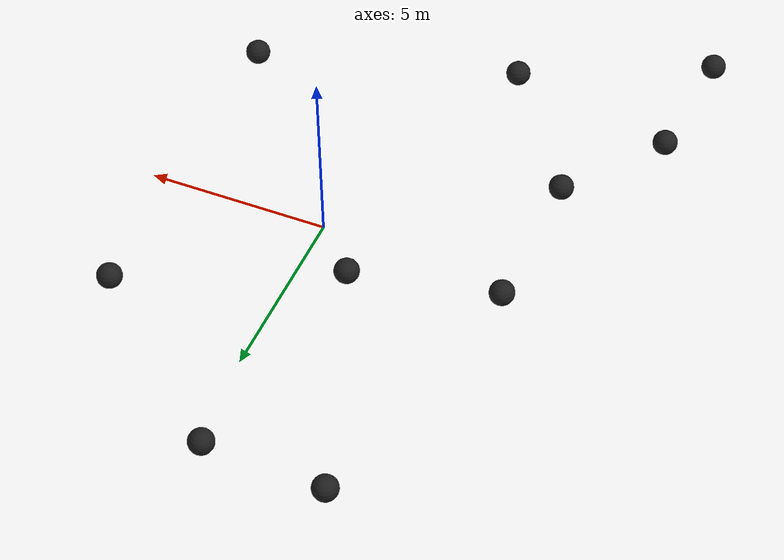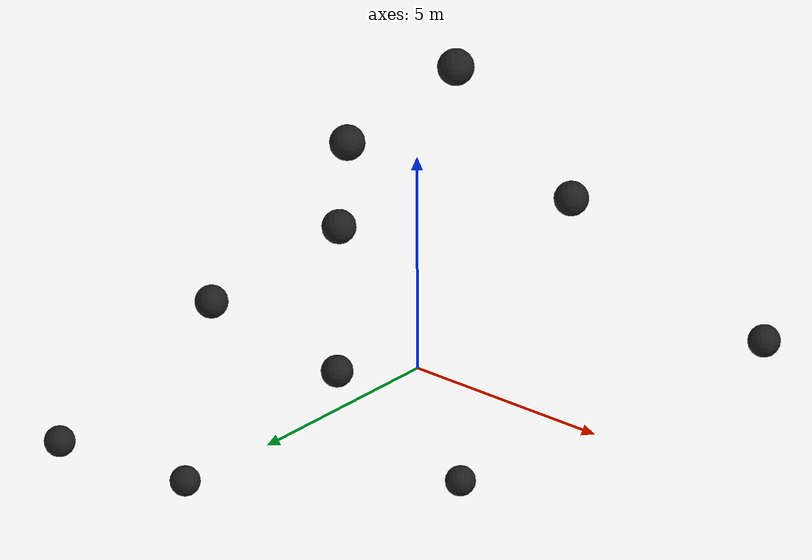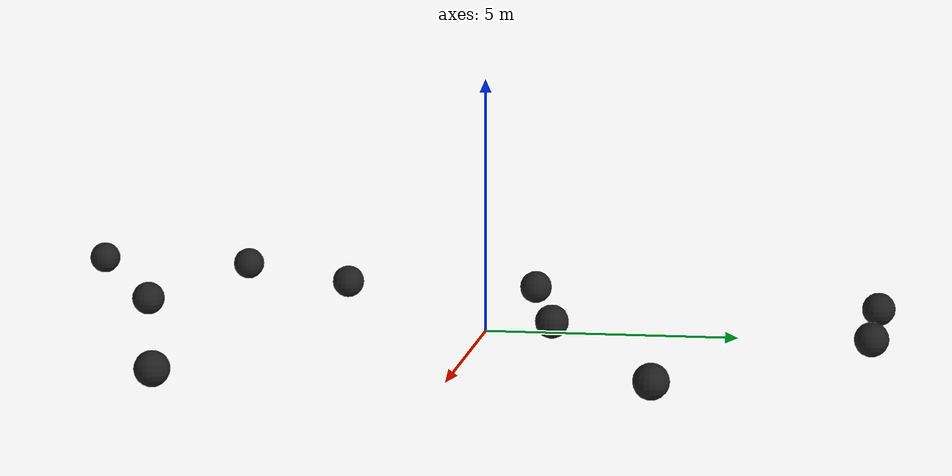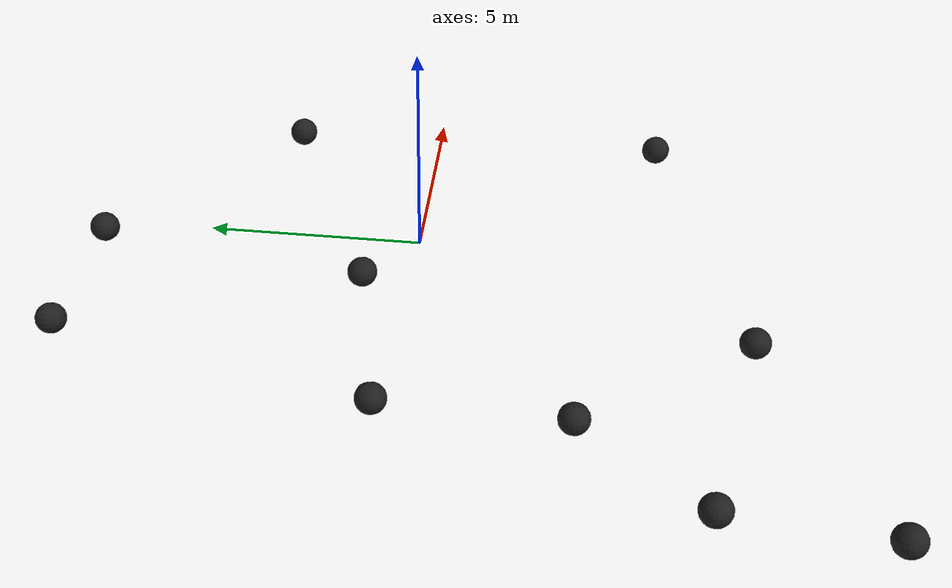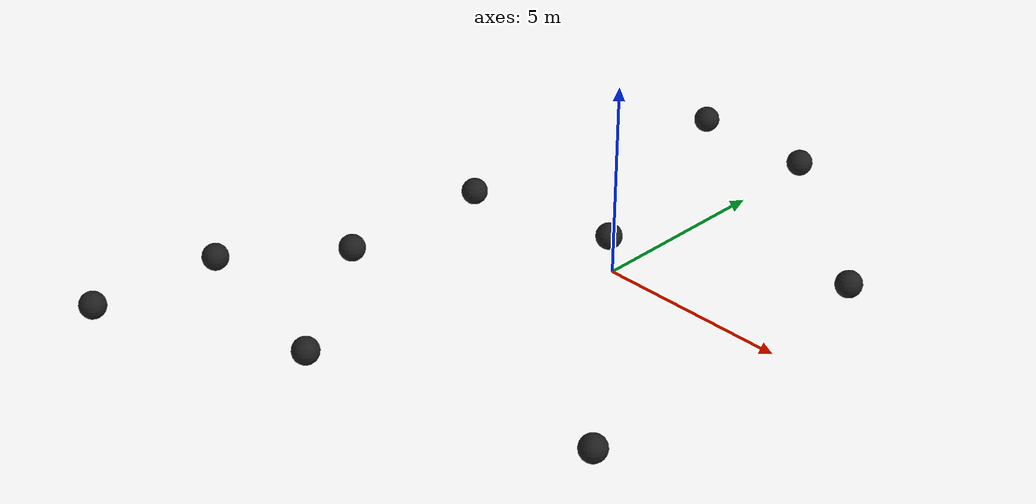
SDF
<?xml version="1.0"?>
<!-- automaticly generated by the 'generate_avoid_obstacls_buoys' script -->
<sdf version="1.6">
  <model name="robotx_obstacle_course">
    <include>
      <name>polyform_a5_0</name>
      <pose>-2.58015987019 -7.58524730201 0.0 0 0 0 </pose>
      <uri>model://polyform_a5</uri>
    </include>

    <include>
      <name>polyform_a5_1</name>
      <pose>-0.236953366022 7.58196200125 0.0 0 0 0 </pose>
      <uri>model://polyform_a5</uri>
    </include>

    <include>
      <name>polyform_a5_2</name>
      <pose>-5.15913632363 0.345860321437 0.0 0 0 0 </pose>
      <uri>model://polyform_a5</uri>
    </include>

    <include>
      <name>polyform_a5_3</name>
      <pose>-5.25274004021 -3.80197738751 0.0 0 0 0 </pose>
      <uri>model://polyform_a5</uri>
    </include>

    <include>
      <name>polyform_a5_4</name>
      <pose>-7.27731563817 -6.5015634484 0.0 0 0 0 </pose>
      <uri>model://polyform_a5</uri>
    </include>

    <include>
      <name>polyform_a5_5</name>
      <pose>-1.19341610949 1.1775337488 0.0 0 0 0 </pose>
      <uri>model://polyform_a5</uri>
    </include>

    <include>
      <name>polyform_a5_6</name>
      <pose>4.36822507644 3.66942246528 0.0 0 0 0 </pose>
      <uri>model://polyform_a5</uri>
    </include>

    <include>
      <name>polyform_a5_7</name>
      <pose>-7.57874619492 -9.95901821018 0.0 0 0 0 </pose>
      <uri>model://polyform_a5</uri>
    </include>

    <include>
      <name>polyform_a5_8</name>
      <pose>4.5842915634 -5.58029079259 0.0 0 0 0 </pose>
      <uri>model://polyform_a5</uri>
    </include>

    <include>
      <name>polyform_a5_9</name>
      <pose>-3.55646651581 7.6980163296 0.0 0 0 0 </pose>
      <uri>model://polyform_a5</uri>
    </include>

  </model>
</sdf>

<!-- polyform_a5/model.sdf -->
<sdf version="1.6">
  <!-- Reference: https://www.polyformus.com/buoys/a-series -->
  <model name="polyform_a5">
    <static>false</static>
    <pose>0 0 0 0 0 0</pose>
    <link name="base_link">
      <inertial>
        <!-- Reference: https://www.sailrite.com/PDF/Polyform-Buoys-Fenders-Accessories.pdf, page 8 -->
        <mass>8.98</mass>
      </inertial>
      <visual name="visual">
        <geometry>
          <sphere><radius>0.343</radius></sphere>
        </geometry>
        <material>
          <script>
            <uri>file://media/materials/scripts/gazebo.material</uri>
            <name>Gazebo/Black</name>
          </script>
        </material>
      </visual>
      <collision name="collision">
        <geometry>
          <sphere><radius>0.343</radius></sphere>
        </geometry>
      </collision>
    </link>

    <plugin name="BuoyancyPlugin" filename="libbuoyancy_gazebo_plugin.so">
      <wave_model>ocean_waves</wave_model>
      <fluid_density>1000</fluid_density>
      <fluid_level>0.0</fluid_level>
      <linear_drag>20.0</linear_drag>
      <angular_drag>2.0</angular_drag>
      <buoyancy name="buoyancy">
        <link_name>base_link</link_name>
        <geometry>
          <sphere><radius>0.343</radius></sphere>
        </geometry>
      </buoyancy>
    </plugin>

  </model>
</sdf>
